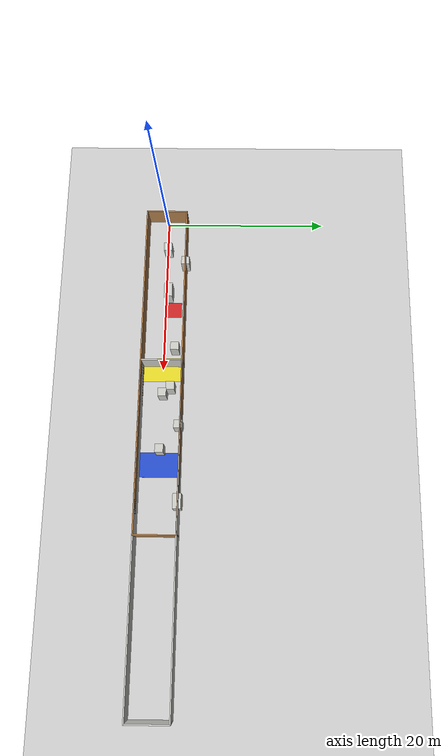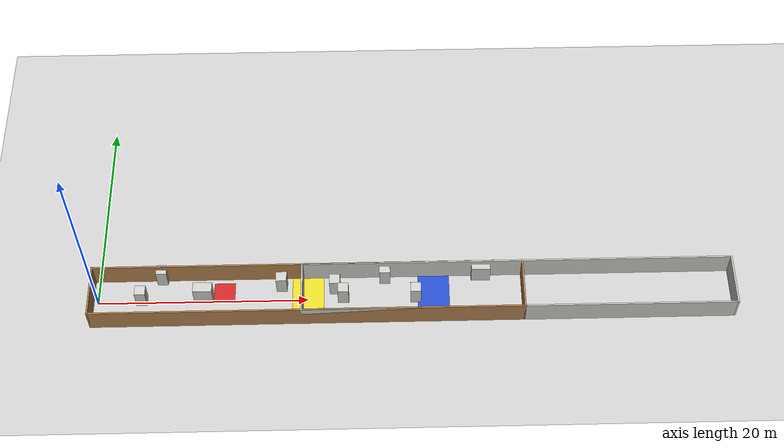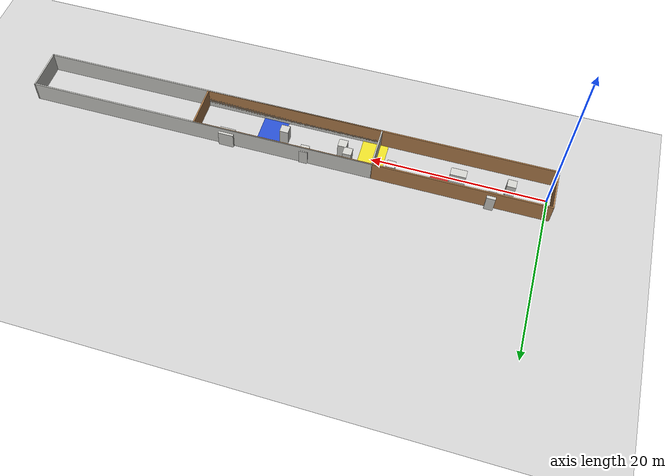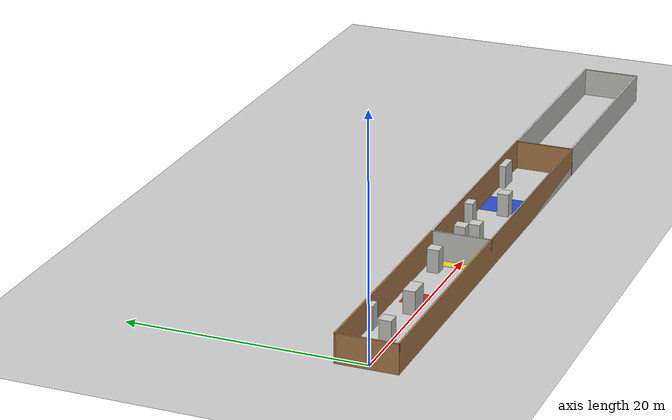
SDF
<sdf version="1.7">
 <world name="default">
  <model name="no_fly_zone_red">
   <static>1</static>
   <pose>12 1 0.005 0 0 0</pose>
   <link name="link">
    <visual name="visual">
     <geometry><box><size>2 2 0.01</size></box></geometry>
     <material>
      <script><uri>file://media/materials/scripts/gazebo.material</uri><name>Gazebo/Red</name></script>
     </material>
    </visual>
   </link>
  </model>
  <model name="speed_limit_zone_yellow">
   <static>1</static>
   <pose>20 0 0.005 0 0 0</pose>
   <link name="link">
    <visual name="visual">
     <geometry><box><size>3 5 0.01</size></box></geometry>
     <material>
      <script><uri>file://media/materials/scripts/gazebo.material</uri><name>Gazebo/Yellow</name></script>
     </material>
    </visual>
   </link>
  </model>
  <model name="height_limit_zone_blue">
   <static>1</static>
   <pose>32 0 0.005 0 0 0</pose>
   <link name="link">
    <visual name="visual">
     <geometry><box><size>3 5 0.01</size></box></geometry>
     <material>
      <script><uri>file://media/materials/scripts/gazebo.material</uri><name>Gazebo/Blue</name></script>
     </material>
    </visual>
   </link>
  </model>
  <light name="sun" type="directional">
   <pose>0 0 10 0 -0 0</pose>
   <diffuse>0.8 0.8 0.8 1</diffuse>
   <specular>0.2 0.2 0.2 1</specular>
   <attenuation>
    <range>1000</range>
    <constant>0.9</constant>
    <linear>0.01</linear>
    <quadratic>0.001</quadratic>
   </attenuation>
   <direction>-0.5 0.1 -0.9</direction>
   <spot><inner_angle>0</inner_angle><outer_angle>0</outer_angle><falloff>0</falloff></spot>
  </light>
  <model name="ground_plane">
   <static>1</static>
   <link name="link">
    <collision name="collision">
     <geometry><plane><normal>0 0 1</normal><size>100 100</size></plane></geometry>
     <surface>
      <contact><collide_bitmask>65535</collide_bitmask></contact>
      <friction><ode><mu>100</mu><mu2>50</mu2></ode></friction>
     </surface>
    </collision>
    <visual name="visual">
     <cast_shadows>0</cast_shadows>
     <geometry><plane><normal>0 0 1</normal><size>100 100</size></plane></geometry>
     <material>
      <script><uri>file://media/materials/scripts/gazebo.material</uri><name>Gazebo/Grey</name></script>
     </material>
    </visual>
   </link>
  </model>
  <gravity>0 0 -9.8</gravity>
  <magnetic_field>6e-06 2.3e-05 -4.2e-05</magnetic_field>
  <atmosphere type="adiabatic"/>
  <physics type="ode">
   <max_step_size>0.002</max_step_size>
   <real_time_factor>1</real_time_factor>
   <real_time_update_rate>500</real_time_update_rate>
  </physics>
  <scene><ambient>0.4 0.4 0.4 1</ambient><background>0.7 0.7 0.7 1</background><shadows>1</shadows></scene>
  <spherical_coordinates>
   <surface_model>EARTH_WGS84</surface_model>
   <latitude_deg>0</latitude_deg>
   <longitude_deg>0</longitude_deg>
   <elevation>0</elevation>
   <heading_deg>0</heading_deg>
  </spherical_coordinates>
  <model name="corridor">
   <pose>20 0 0 0 -0 0</pose>
   <link name="Wall_0">
    <collision name="Wall_0_Collision">
     <geometry><box><size>41.15 0.15 2.5</size></box></geometry>
     <pose>0 0 1.25 0 -0 0</pose>
    </collision>
    <visual name="Wall_0_Visual">
     <pose>0 0 1.25 0 -0 0</pose>
     <geometry><box><size>41.15 0.15 2.5</size></box></geometry>
     <material>
      <script><uri>file://media/materials/scripts/gazebo.material</uri><name>Gazebo/Wood</name></script>
      <ambient>1 1 1 1</ambient>
     </material>
     <meta><layer>0</layer></meta>
    </visual>
    <pose>0 2.5 0 0 -0 0</pose>
   </link>
   <link name="Wall_2">
    <collision name="Wall_2_Collision">
     <geometry><box><size>41.15 0.15 2.5</size></box></geometry>
     <pose>0 0 1.25 0 -0 0</pose>
    </collision>
    <visual name="Wall_2_Visual">
     <pose>0 0 1.25 0 -0 0</pose>
     <geometry><box><size>41.15 0.15 2.5</size></box></geometry>
     <material>
      <script><uri>file://media/materials/scripts/gazebo.material</uri><name>Gazebo/Wood</name></script>
      <ambient>1 1 1 1</ambient>
     </material>
     <meta><layer>0</layer></meta>
    </visual>
    <pose>0 -2.5 0 0 -0 0</pose>
   </link>
   <link name="Wall_4">
    <collision name="Wall_4_Collision">
     <geometry><box><size>5.15 0.15 2.5</size></box></geometry>
     <pose>0 0 1.25 0 -0 0</pose>
    </collision>
    <visual name="Wall_4_Visual">
     <pose>0 0 1.25 0 -0 0</pose>
     <geometry><box><size>5.15 0.15 2.5</size></box></geometry>
     <material>
      <script><uri>file://media/materials/scripts/gazebo.material</uri><name>Gazebo/Wood</name></script>
      <ambient>1 1 1 1</ambient>
     </material>
     <meta><layer>0</layer></meta>
    </visual>
    <pose>-20.5 0 0 0 -0 -1.5708</pose>
   </link>
   <link name="Wall_6">
    <collision name="Wall_6_Collision">
     <geometry><box><size>5.15 0.15 2.5</size></box></geometry>
     <pose>0 0 1.25 0 -0 0</pose>
    </collision>
    <visual name="Wall_6_Visual">
     <pose>0 0 1.25 0 -0 0</pose>
     <geometry><box><size>5.15 0.15 2.5</size></box></geometry>
     <material>
      <script><uri>file://media/materials/scripts/gazebo.material</uri><name>Gazebo/Wood</name></script>
      <ambient>1 1 1 1</ambient>
     </material>
     <meta><layer>0</layer></meta>
    </visual>
    <pose>20.5 0 0 0 -0 -1.5708</pose>
   </link>
   <static>1</static>
  </model>
  <model name="box_1_1_2">
   <pose>6.04162 2.47199 0 0 -0 0</pose>
   <link name="Wall_0">
    <collision name="Wall_0_Collision">
     <geometry><box><size>1.01 1 2</size></box></geometry>
     <pose>0 0 1 0 -0 0</pose>
    </collision>
    <visual name="Wall_0_Visual">
     <pose>0 0 1 0 -0 0</pose>
     <geometry><box><size>1.01 1 2</size></box></geometry>
     <material>
      <script><uri>file://media/materials/scripts/gazebo.material</uri><name>Gazebo/CeilingTiled</name></script>
      <ambient>0.921569 0.807843 0.615686 1</ambient>
     </material>
     <meta><layer>0</layer></meta>
    </visual>
   </link>
   <static>1</static>
  </model>
  <model name="box_1.8_1_2">
   <pose>10.0521 0.448709 0 0 -0 0</pose>
   <link name="Wall_0">
    <collision name="Wall_0_Collision">
     <geometry><box><size>1.8 1 2</size></box></geometry>
     <pose>0 0 1 0 -0 0</pose>
    </collision>
    <visual name="Wall_0_Visual">
     <pose>0 0 1 0 -0 0</pose>
     <geometry><box><size>1.8 1 2</size></box></geometry>
     <material>
      <script><uri>file://media/materials/scripts/gazebo.material</uri><name>Gazebo/CeilingTiled</name></script>
      <ambient>0.921569 0.807843 0.615686 1</ambient>
     </material>
     <meta><layer>0</layer></meta>
    </visual>
   </link>
   <static>1</static>
  </model>
  <model name="box_1_1_2_0">
   <pose>22.5815 1.10399 0 0 -0 0</pose>
   <link name="Wall_0">
    <collision name="Wall_0_Collision">
     <geometry><box><size>1.01 1 2</size></box></geometry>
     <pose>0 0 1 0 -0 0</pose>
    </collision>
    <visual name="Wall_0_Visual">
     <pose>0 0 1 0 -0 0</pose>
     <geometry><box><size>1.01 1 2</size></box></geometry>
     <material>
      <script><uri>file://media/materials/scripts/gazebo.material</uri><name>Gazebo/CeilingTiled</name></script>
      <ambient>0.921569 0.807843 0.615686 1</ambient>
     </material>
     <meta><layer>0</layer></meta>
    </visual>
   </link>
   <static>1</static>
  </model>
  <model name="box_1_1_2_1">
   <pose>23.3781 0.15299 0 0 -0 0</pose>
   <link name="Wall_0">
    <collision name="Wall_0_Collision">
     <geometry><box><size>1.01 1 2</size></box></geometry>
     <pose>0 0 1 0 -0 0</pose>
    </collision>
    <visual name="Wall_0_Visual">
     <pose>0 0 1 0 -0 0</pose>
     <geometry><box><size>1.01 1 2</size></box></geometry>
     <material>
      <script><uri>file://media/materials/scripts/gazebo.material</uri><name>Gazebo/CeilingTiled</name></script>
      <ambient>0.921569 0.807843 0.615686 1</ambient>
     </material>
     <meta><layer>0</layer></meta>
    </visual>
   </link>
   <static>1</static>
  </model>
  <model name="box_1_1_2_2">
   <pose>30.2832 0.060 0 0 -0 0</pose>
   <link name="Wall_0">
    <collision name="Wall_0_Collision">
     <geometry><box><size>1.01 1 2</size></box></geometry>
     <pose>0 0 1 0 -0 0</pose>
    </collision>
    <visual name="Wall_0_Visual">
     <pose>0 0 1 0 -0 0</pose>
     <geometry><box><size>1.01 1 2</size></box></geometry>
     <material>
      <script><uri>file://media/materials/scripts/gazebo.material</uri><name>Gazebo/CeilingTiled</name></script>
      <ambient>0.921569 0.807843 0.615686 1</ambient>
     </material>
     <meta><layer>0</layer></meta>
    </visual>
   </link>
   <static>1</static>
  </model>
  <model name="box_1.8_1_2_1">
   <pose>36.5424 2.36218 0 0 -0 0</pose>
   <link name="Wall_0">
    <collision name="Wall_0_Collision">
     <geometry><box><size>1.8 1 2</size></box></geometry>
     <pose>0 0 1 0 -0 0</pose>
    </collision>
    <visual name="Wall_0_Visual">
     <pose>0 0 1 0 -0 0</pose>
     <geometry><box><size>1.8 1 2</size></box></geometry>
     <material>
      <script><uri>file://media/materials/scripts/gazebo.material</uri><name>Gazebo/CeilingTiled</name></script>
      <ambient>0.921569 0.807843 0.615686 1</ambient>
     </material>
     <meta><layer>0</layer></meta>
    </visual>
   </link>
   <static>1</static>
  </model>
  <model name="box_1_1_2_3">
   <pose>4.17173 0.22955 0 0 -0 0</pose>
   <link name="Wall_0">
    <collision name="Wall_0_Collision">
     <geometry><box><size>1.01 1 2</size></box></geometry>
     <pose>0 0 1 0 -0 0</pose>
    </collision>
    <visual name="Wall_0_Visual">
     <pose>0 0 1 0 -0 0</pose>
     <geometry><box><size>1.01 1 2</size></box></geometry>
     <material>
      <script><uri>file://media/materials/scripts/gazebo.material</uri><name>Gazebo/CeilingTiled</name></script>
      <ambient>0.921569 0.807843 0.615686 1</ambient>
     </material>
     <meta><layer>0</layer></meta>
    </visual>
   </link>
   <static>1</static>
  </model>
  <model name="box_1_1_2_4">
   <pose>27.3502 2.19131 0 0 -0 0</pose>
   <link name="Wall_0">
    <collision name="Wall_0_Collision">
     <geometry><box><size>1.01 1 2</size></box></geometry>
     <pose>0 0 1 0 -0 0</pose>
    </collision>
    <visual name="Wall_0_Visual">
     <pose>0 0 1 0 -0 0</pose>
     <geometry><box><size>1.01 1 2</size></box></geometry>
     <material>
      <script><uri>file://media/materials/scripts/gazebo.material</uri><name>Gazebo/CeilingTiled</name></script>
      <ambient>0.921569 0.807843 0.615686 1</ambient>
     </material>
     <meta><layer>0</layer></meta>
    </visual>
   </link>
   <static>1</static>
  </model>
  <model name="box_1_1_2_5">
   <pose>17.5017 1.47953 0 0 -0 0</pose>
   <link name="Wall_0">
    <collision name="Wall_0_Collision">
     <geometry><box><size>1.01 1 2</size></box></geometry>
     <pose>0 0 1 0 -0 0</pose>
    </collision>
    <visual name="Wall_0_Visual">
     <pose>0 0 1 0 -0 0</pose>
     <geometry><box><size>1.01 1 2</size></box></geometry>
     <material>
      <script><uri>file://media/materials/scripts/gazebo.material</uri><name>Gazebo/CeilingTiled</name></script>
      <ambient>0.921569 0.807843 0.615686 1</ambient>
     </material>
     <meta><layer>0</layer></meta>
    </visual>
   </link>
   <static>1</static>
  </model>
  <model name="corridor">
   <pose>20 0 0 0 -0 0</pose>
   <link name="Wall_0">
    <collision name="Wall_0_Collision">
     <geometry><box><size>41.15 0.15 2.5</size></box></geometry>
     <pose>0 0 1.25 0 -0 0</pose>
    </collision>
    <visual name="Wall_0_Visual">
     <pose>0 0 1.25 0 -0 0</pose>
     <geometry><box><size>41.15 0.15 2.5</size></box></geometry>
     <material>
      <script><uri>file://media/materials/scripts/gazebo.material</uri><name>Gazebo/CeilingTiled</name></script>
      <ambient>0.921569 0.807843 0.615686 1</ambient>
     </material>
     <meta><layer>0</layer></meta>
    </visual>
    <pose>20 2.5 0 0 -0 0</pose>
   </link>
   <link name="Wall_2">
    <collision name="Wall_2_Collision">
     <geometry><box><size>41.15 0.15 2.5</size></box></geometry>
     <pose>0 0 1.25 0 -0 0</pose>
    </collision>
    <visual name="Wall_2_Visual">
     <pose>0 0 1.25 0 -0 0</pose>
     <geometry><box><size>41.15 0.15 2.5</size></box></geometry>
     <material>
      <script><uri>file://media/materials/scripts/gazebo.material</uri><name>Gazebo/CeilingTiled</name></script>
      <ambient>0.921569 0.807843 0.615686 1</ambient>
     </material>
     <meta><layer>0</layer></meta>
    </visual>
    <pose>20 -2.5 0 0 -0 0</pose>
   </link>
   <link name="Wall_4">
    <collision name="Wall_4_Collision">
     <geometry><box><size>5.15 0.15 2.5</size></box></geometry>
     <pose>0 0 1.25 0 -0 0</pose>
    </collision>
    <visual name="Wall_4_Visual">
     <pose>0 0 1.25 0 -0 0</pose>
     <geometry><box><size>5.15 0.15 2.5</size></box></geometry>
     <material>
      <script><uri>file://media/materials/scripts/gazebo.material</uri><name>Gazebo/CeilingTiled</name></script>
      <ambient>0.921569 0.807843 0.615686 1</ambient>
     </material>
     <meta><layer>0</layer></meta>
    </visual>
    <pose>-0.5 0 0 0 0 -1.5708</pose>
   </link>
   <link name="Wall_6">
    <collision name="Wall_6_Collision">
     <geometry><box><size>5.15 0.15 2.5</size></box></geometry>
     <pose>0 0 1.25 0 -0 0</pose>
    </collision>
    <visual name="Wall_6_Visual">
     <pose>0 0 1.25 0 -0 0</pose>
     <geometry><box><size>5.15 0.15 2.5</size></box></geometry>
     <material>
      <script><uri>file://media/materials/scripts/gazebo.material</uri><name>Gazebo/CeilingTiled</name></script>
      <ambient>0.921569 0.807843 0.615686 1</ambient>
     </material>
     <meta><layer>0</layer></meta>
    </visual>
    <pose>40.5 0 0 0 0 -1.5708</pose>
   </link>
  </model>
  <model name="box_1_1_2_5">
   <pose>17.5017 1.47953 0 0 -0 0</pose>
   <link name="Wall_0">
    <collision name="Wall_0_Collision">
     <geometry><box><size>1.01 1 2</size></box></geometry>
     <pose>0 0 1 0 -0 0</pose>
    </collision>
    <visual name="Wall_0_Visual">
     <pose>0 0 1 0 -0 0</pose>
     <geometry><box><size>1.01 1 2</size></box></geometry>
     <material>
      <script><uri>file://media/materials/scripts/gazebo.material</uri><name>Gazebo/CeilingTiled</name></script>
      <ambient>0.921569 0.807843 0.615686 1</ambient>
     </material>
     <meta><layer>0</layer></meta>
    </visual>
   </link>
   <static>1</static>
  </model>
 </world>
</sdf>
